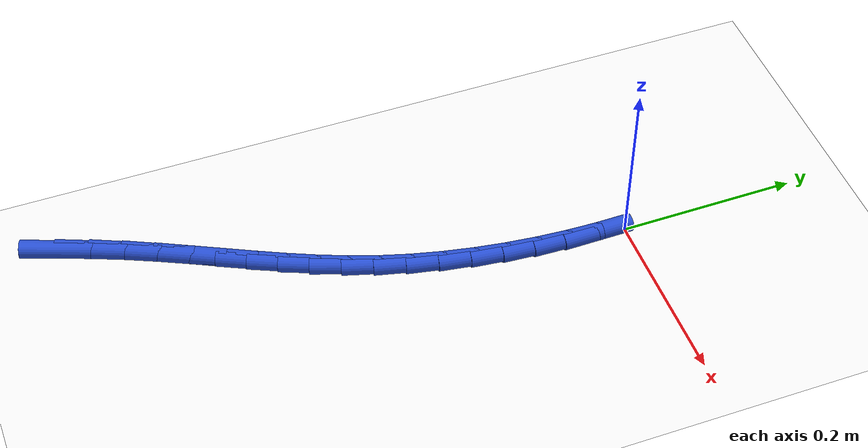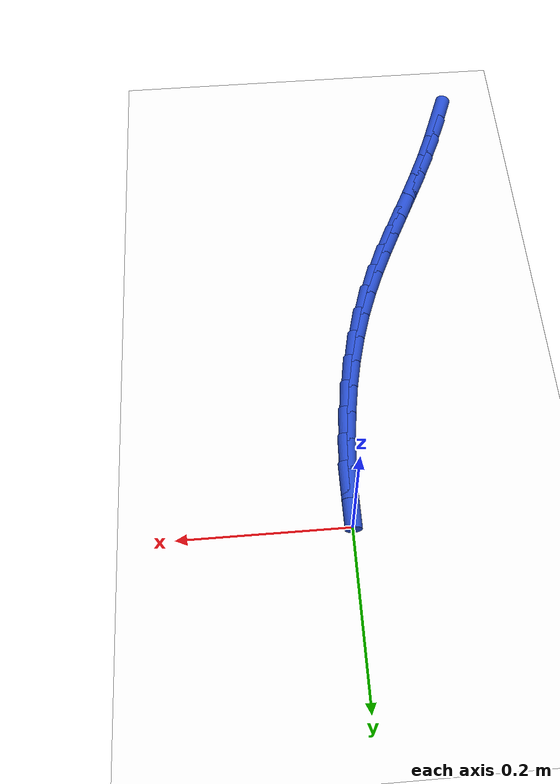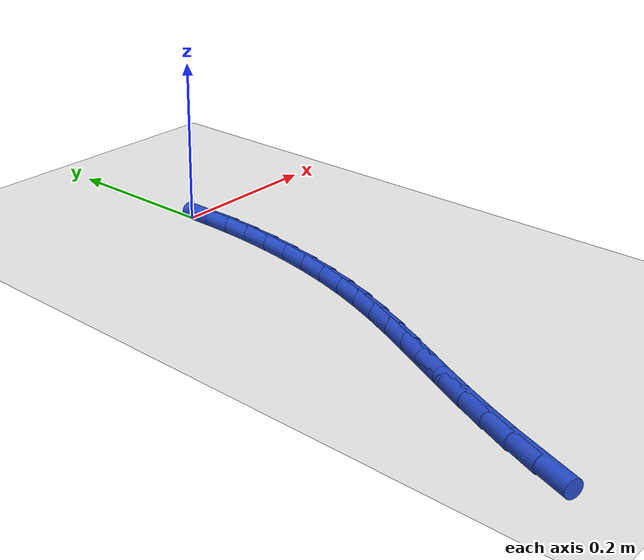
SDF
<sdf version="1.6">
 <world name="default">
  <model name="ground_plane">
   <static>1</static>
   <link name="link">
    <collision name="collision">
     <geometry><plane><normal>0 0 1</normal><size>100 100</size></plane></geometry>
     <surface><friction><ode><mu>100</mu><mu2>50</mu2></ode></friction></surface>
    </collision>
    <visual name="visual">
     <cast_shadows>0</cast_shadows>
     <geometry><plane><normal>0 0 1</normal><size>100 100</size></plane></geometry>
     <material>
      <script><uri>file://media/materials/scripts/gazebo.material</uri><name>Gazebo/WhiteGlow</name></script>
     </material>
    </visual>
   </link>
  </model>
  <model name="line">
   <link name="link_202">
    <pose>-0.17815812917820317 -0.5909570529163938 0.01 0 1.57 1.2095089110771666</pose>
    <collision name="collision">
     <geometry><cylinder><radius>0.01</radius><length>0.08</length></cylinder></geometry>
    </collision>
    <visual name="visual">
     <material>
      <script><name>Gazebo/Blue</name><uri>file://media/materials/scripts/gazebo.material</uri></script>
     </material>
     <geometry><cylinder><radius>0.01</radius><length>0.08</length></cylinder></geometry>
    </visual>
   </link>
   <link name="link_203">
    <pose>-0.16485645233935797 -0.55575564017094 0.01 0 1.57 1.1766461030211182</pose>
    <collision name="collision">
     <geometry><cylinder><radius>0.01</radius><length>0.08</length></cylinder></geometry>
    </collision>
    <visual name="visual">
     <material>
      <script><name>Gazebo/Blue</name><uri>file://media/materials/scripts/gazebo.material</uri></script>
     </material>
     <geometry><cylinder><radius>0.01</radius><length>0.08</length></cylinder></geometry>
    </visual>
   </link>
   <link name="link_204">
    <pose>-0.15076742167088084 -0.5218808324127826 0.01 0 1.57 1.1444059099985706</pose>
    <collision name="collision">
     <geometry><cylinder><radius>0.01</radius><length>0.08</length></cylinder></geometry>
    </collision>
    <visual name="visual">
     <material>
      <script><name>Gazebo/Blue</name><uri>file://media/materials/scripts/gazebo.material</uri></script>
     </material>
     <geometry><cylinder><radius>0.01</radius><length>0.08</length></cylinder></geometry>
    </visual>
   </link>
   <link name="link_205">
    <pose>-0.13597350973707933 -0.4893137329171004 0.01 0 1.57 1.1216688424555767</pose>
    <collision name="collision">
     <geometry><cylinder><radius>0.01</radius><length>0.08</length></cylinder></geometry>
    </collision>
    <visual name="visual">
     <material>
      <script><name>Gazebo/Blue</name><uri>file://media/materials/scripts/gazebo.material</uri></script>
     </material>
     <geometry><cylinder><radius>0.01</radius><length>0.08</length></cylinder></geometry>
    </visual>
   </link>
   <link name="link_206">
    <pose>-0.12076524692499951 -0.45775997242554967 0.01 0 1.57 1.1096549448230508</pose>
    <collision name="collision">
     <geometry><cylinder><radius>0.01</radius><length>0.08</length></cylinder></geometry>
    </collision>
    <visual name="visual">
     <material>
      <script><name>Gazebo/Blue</name><uri>file://media/materials/scripts/gazebo.material</uri></script>
     </material>
     <geometry><cylinder><radius>0.01</radius><length>0.08</length></cylinder></geometry>
    </visual>
   </link>
   <link name="link_207">
    <pose>-0.10543989876259721 -0.4269162642245047 0.01 0 1.57 1.1090772668437547</pose>
    <collision name="collision">
     <geometry><cylinder><radius>0.01</radius><length>0.08</length></cylinder></geometry>
    </collision>
    <visual name="visual">
     <material>
      <script><name>Gazebo/Blue</name><uri>file://media/materials/scripts/gazebo.material</uri></script>
     </material>
     <geometry><cylinder><radius>0.01</radius><length>0.08</length></cylinder></geometry>
    </visual>
   </link>
   <link name="link_208">
    <pose>-0.09029473077782964 -0.3964793216003423 0.01 0 1.57 1.1203957538620368</pose>
    <collision name="collision">
     <geometry><cylinder><radius>0.01</radius><length>0.08</length></cylinder></geometry>
    </collision>
    <visual name="visual">
     <material>
      <script><name>Gazebo/Blue</name><uri>file://media/materials/scripts/gazebo.material</uri></script>
     </material>
     <geometry><cylinder><radius>0.01</radius><length>0.08</length></cylinder></geometry>
    </visual>
   </link>
   <link name="link_209">
    <pose>-0.07562700849865261 -0.3661458578394367 0.01 0 1.57 1.1437820795802887</pose>
    <collision name="collision">
     <geometry><cylinder><radius>0.01</radius><length>0.08</length></cylinder></geometry>
    </collision>
    <visual name="visual">
     <material>
      <script><name>Gazebo/Blue</name><uri>file://media/materials/scripts/gazebo.material</uri></script>
     </material>
     <geometry><cylinder><radius>0.01</radius><length>0.08</length></cylinder></geometry>
    </visual>
   </link>
   <link name="link_210">
    <pose>-0.061733997453022535 -0.33561258622816303 0.01 0 1.57 1.179050542206593</pose>
    <collision name="collision">
     <geometry><cylinder><radius>0.01</radius><length>0.08</length></cylinder></geometry>
    </collision>
    <visual name="visual">
     <material>
      <script><name>Gazebo/Blue</name><uri>file://media/materials/scripts/gazebo.material</uri></script>
     </material>
     <geometry><cylinder><radius>0.01</radius><length>0.08</length></cylinder></geometry>
    </visual>
   </link>
   <link name="link_211">
    <pose>-0.04891296316889567 -0.30457622005289636 0.01 0 1.57 1.2255119793375098</pose>
    <collision name="collision">
     <geometry><cylinder><radius>0.01</radius><length>0.08</length></cylinder></geometry>
    </collision>
    <visual name="visual">
     <material>
      <script><name>Gazebo/Blue</name><uri>file://media/materials/scripts/gazebo.material</uri></script>
     </material>
     <geometry><cylinder><radius>0.01</radius><length>0.08</length></cylinder></geometry>
    </visual>
   </link>
   <link name="link_212">
    <pose>-0.03745998570308375 -0.27273529757343373 0.01 0 1.57 1.2775474746453357</pose>
    <collision name="collision">
     <geometry><cylinder><radius>0.01</radius><length>0.08</length></cylinder></geometry>
    </collision>
    <visual name="visual">
     <material>
      <script><name>Gazebo/Blue</name><uri>file://media/materials/scripts/gazebo.material</uri></script>
     </material>
     <geometry><cylinder><radius>0.01</radius><length>0.08</length></cylinder></geometry>
    </visual>
   </link>
   <link name="link_213">
    <pose>-0.02756216902938986 -0.23995612026855842 0.01 0 1.57 1.326850974289231</pose>
    <collision name="collision">
     <geometry><cylinder><radius>0.01</radius><length>0.08</length></cylinder></geometry>
    </collision>
    <visual name="visual">
     <material>
      <script><name>Gazebo/Blue</name><uri>file://media/materials/scripts/gazebo.material</uri></script>
     </material>
     <geometry><cylinder><radius>0.01</radius><length>0.08</length></cylinder></geometry>
    </visual>
   </link>
   <link name="link_214">
    <pose>-0.01921135920104578 -0.20640557940136464 0.01 0 1.57 1.3731891685737374</pose>
    <collision name="collision">
     <geometry><cylinder><radius>0.01</radius><length>0.08</length></cylinder></geometry>
    </collision>
    <visual name="visual">
     <material>
      <script><name>Gazebo/Blue</name><uri>file://media/materials/scripts/gazebo.material</uri></script>
     </material>
     <geometry><cylinder><radius>0.01</radius><length>0.08</length></cylinder></geometry>
    </visual>
   </link>
   <link name="link_215">
    <pose>-0.012379098289777781 -0.17228182319703972 0.01 0 1.57 1.417165742755732</pose>
    <collision name="collision">
     <geometry><cylinder><radius>0.01</radius><length>0.08</length></cylinder></geometry>
    </collision>
    <visual name="visual">
     <material>
      <script><name>Gazebo/Blue</name><uri>file://media/materials/scripts/gazebo.material</uri></script>
     </material>
     <geometry><cylinder><radius>0.01</radius><length>0.08</length></cylinder></geometry>
    </visual>
   </link>
   <link name="link_216">
    <pose>-0.00703692836731208 -0.13778299988077003 0.01 0 1.57 1.4593507534394863</pose>
    <collision name="collision">
     <geometry><cylinder><radius>0.01</radius><length>0.08</length></cylinder></geometry>
    </collision>
    <visual name="visual">
     <material>
      <script><name>Gazebo/Blue</name><uri>file://media/materials/scripts/gazebo.material</uri></script>
     </material>
     <geometry><cylinder><radius>0.01</radius><length>0.08</length></cylinder></geometry>
    </visual>
   </link>
   <link name="link_217">
    <pose>-0.0031563915053752275 -0.1031072576777445 0.01 0 1.57 1.5002916513904192</pose>
    <collision name="collision">
     <geometry><cylinder><radius>0.01</radius><length>0.08</length></cylinder></geometry>
    </collision>
    <visual name="visual">
     <material>
      <script><name>Gazebo/Blue</name><uri>file://media/materials/scripts/gazebo.material</uri></script>
     </material>
     <geometry><cylinder><radius>0.01</radius><length>0.08</length></cylinder></geometry>
    </visual>
   </link>
   <link name="link_218">
    <pose>-0.0007090297756933892 -0.06845274481314963 0.01 0 1.57 1.5405270665254738</pose>
    <collision name="collision">
     <geometry><cylinder><radius>0.01</radius><length>0.08</length></cylinder></geometry>
    </collision>
    <visual name="visual">
     <material>
      <script><name>Gazebo/Blue</name><uri>file://media/materials/scripts/gazebo.material</uri></script>
     </material>
     <geometry><cylinder><radius>0.01</radius><length>0.08</length></cylinder></geometry>
    </visual>
   </link>
   <link name="link_219">
    <pose>0.00033361475000712876 -0.03401760951217263 0.01 0 1.57 -1.5609895220321437</pose>
    <collision name="collision">
     <geometry><cylinder><radius>0.01</radius><length>0.08</length></cylinder></geometry>
    </collision>
    <visual name="visual">
     <material>
      <script><name>Gazebo/Blue</name><uri>file://media/materials/scripts/gazebo.material</uri></script>
     </material>
     <geometry><cylinder><radius>0.01</radius><length>0.08</length></cylinder></geometry>
    </visual>
   </link>
  </model>
 </world>
</sdf>
